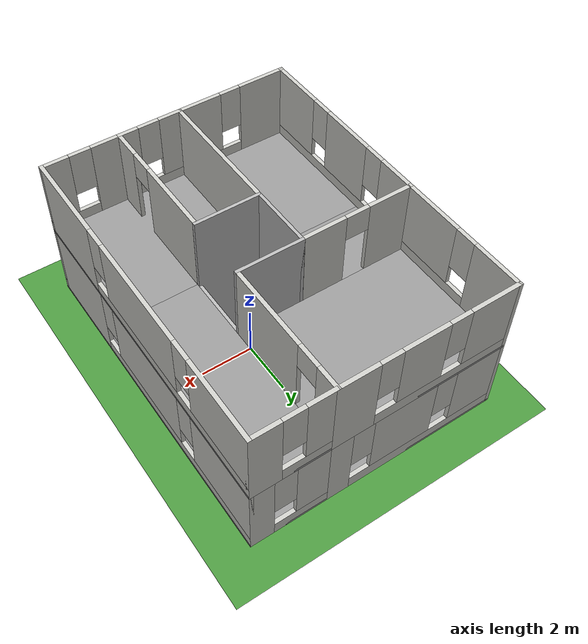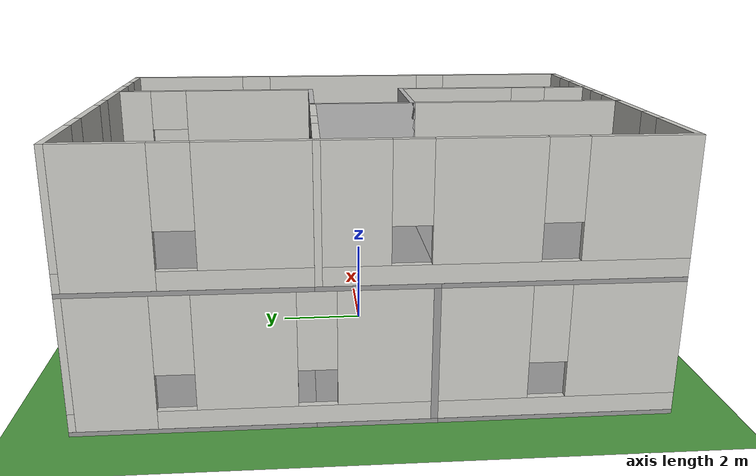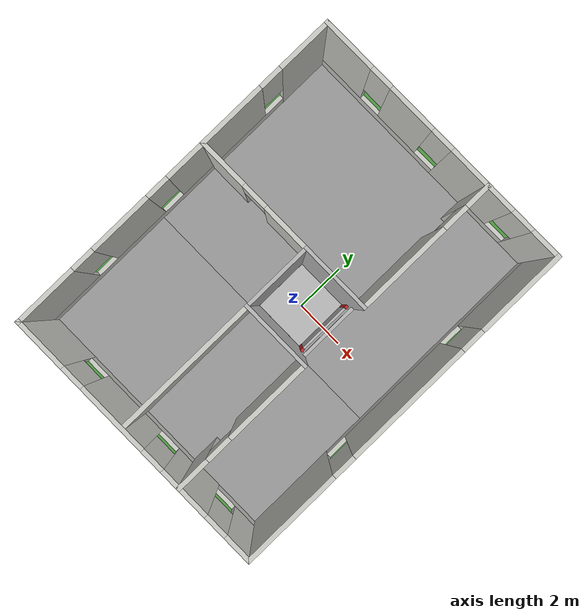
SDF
<?xml version="1.0" ?>
<sdf version="1.5">
  <world name="default">

    <!-- A global light source -->
    <include>
      <uri>model://sun</uri>
    </include>

    <!-- A ground plane -->
    <include>
      <uri>model://ground_plane_gras</uri>
    </include>

    <scene>
      <sky>
        <clouds>
          <speed>12</speed>
        </clouds>
      </sky>
    </scene>

    <include>
      <uri>model://building_with_elevator</uri>
      <pose>-0.6995 0 0 0 0 1.570796</pose>
    </include>

    <!-- World plugin that publishes event messages.
         The topics used in these messages match up with topics used by the
         plugin in the elevator model below.
    -->
    <plugin filename="libSimEventsPlugin.so" name="elevator_event_plugin">
      <!-- Region on the ground floor, in front of the elevator -->
      <region>
        <name>region1</name>
        <volume>
          <min>1.5 -1 0</min>
          <max>2.5 1 1</max>
        </volume>
      </region>

      <!-- Region on the first floor, in front of the elevator -->
      <region>
        <name>region2</name>
        <volume>
          <min>1.5 -1 3</min>
          <max>2.5 1 4</max>
        </volume>
      </region>

      <!-- Event publisher for ground floor-->
      <event>
        <name>region1_event</name>
        <type>occupied</type>
        <region>region1</region>
        <topic>~/elevator</topic>
        <msg_data>0</msg_data>
      </event>

      <!-- Event publisher for first floor-->
      <event>
        <name>region2_event</name>
        <type>occupied</type>
        <region>region2</region>
        <topic>~/elevator</topic>
        <msg_data>1</msg_data>
      </event>
    </plugin>

    <!-- The elevator car -->
    <model name="elevator">
      <pose>0 0 0.05 0 0 0</pose>
      <link name="link">
        <inertial>
          <mass>800</mass>
        </inertial>

        <collision name="floor_collision">
          <geometry>
            <box>
              <size>2.25 2.25 0.1</size>
            </box>
          </geometry>
        </collision>
        <visual name="floor_visual">
          <geometry>
            <box>
              <size>2.25 2.25 0.1</size>
            </box>
          </geometry>
        </visual>

        <!-- wall1_collision is the wall to the right of the door, when
             facing the door -->
        <collision name="wall1_collision">
         <pose>1.0745 1.0625 1.125 0 0 0</pose>
         <geometry>
           <box>
             <size>0.1 0.125 2.25</size>
           </box>
         </geometry>
        </collision>
        <visual name="wall1_visual">
         <pose>1.0745 1.0625 1.125 0 0 0</pose>
         <geometry>
           <box>
             <size>0.1 0.125 2.25</size>
           </box>
         </geometry>
         <material>
           <script>
             <name>Gazebo/Red</name>
           </script>
         </material>
        </visual>

        <!-- wall2_collision is the wall to the left of the door, when
             facing the door -->
        <collision name="wall2_collision">
          <pose>1.0745 -1.0625 1.125 0 0 0</pose>
          <geometry>
            <box>
              <size>0.1 0.125 2.25</size>
            </box>
          </geometry>
        </collision>
        <visual name="wall2_visual">
          <pose>1.0745 -1.0625 1.125 0 0 0</pose>
          <geometry>
            <box>
              <size>0.1 0.125 2.25</size>
            </box>
          </geometry>
          <material>
            <script>
              <name>Gazebo/Red</name>
            </script>
          </material>
        </visual>
      </link>

      <link name="door">
        <pose>1.0745 -0.5 1.06 0 0 0</pose>
        <collision name="collision">
          <geometry>
            <box>
              <size>0.08 1 2.0</size>
            </box>
          </geometry>
        </collision>
        <visual name="visual">
          <geometry>
            <box>
              <size>0.08 1 2.0</size>
            </box>
          </geometry>
        </visual>
      </link>
      <joint name="door" type="revolute">
        <parent>link</parent>
        <child>door</child>
        <pose>0 -0.46 0 3.14159265 0 0</pose>
        <axis>
          <xyz>0 0 1</xyz>
          <limit>
            <lower>0</lower>
            <upper>2</upper>
            <effort>10</effort>
          </limit>

          <dynamics>
            <damping>2</damping>
          </dynamics>
        </axis>
      </joint>

      <link name="door2">
        <pose>1.0745 0.5 1.06 0 0 0</pose>
        <collision name="collision">
          <geometry>
            <box>
              <size>0.08 1 2.0</size>
            </box>
          </geometry>
        </collision>
        <visual name="visual">
          <geometry>
            <box>
              <size>0.08 1 2.0</size>
            </box>
          </geometry>
        </visual>
      </link>
      <joint name="door2" type="revolute">
        <parent>link</parent>
        <child>door2</child>
        <pose>0 0.46 0 0 0 0</pose>
        <axis>
          <xyz>0 0 1</xyz>
          <limit>
            <lower>0</lower>
            <upper>2</upper>
            <effort>10</effort>
          </limit>

          <dynamics>
            <damping>2</damping>
          </dynamics>
        </axis>
      </joint>

      <joint name="lift" type="prismatic">
        <parent>world</parent>
        <child>link</child>
        <axis>
          <xyz>0 0 1</xyz>
          <limit>
            <lower>0</lower>
            <upper>10</upper>
            <effort>100000</effort>
          </limit>

          <dynamics>
            <damping>50</damping>
          </dynamics>
        </axis>
        <physics>
          <ode>
            <implicit_spring_damper>1</implicit_spring_damper>
          </ode>
        </physics>
      </joint>

      <!-- Plugin to control the elevator -->
      <plugin filename="libgazebo_ros_elevator.so" name="elevator_plugin">
        <lift_joint>elevator::lift</lift_joint>
        <door_joint>elevator::door, elevator::door2</door_joint>
        <floor_height>3.0</floor_height>

        <!-- Time the elevator door will stay open in seconds -->
        <door_wait_time>10</door_wait_time>

        <!-- This topic is used to control the elevator -->
        <topic>elevator</topic>

        <door_joint_move_distance>2</door_joint_move_distance>
      </plugin>
    </model>

    <!-- Elevator shaft -->
    <model name="elevator_shaft">
      <static>true</static>
      <link name="link">
        <collision name="shaft_wall1_collision">
          <pose>0 1.19 3 0 0 0</pose>
          <geometry>
            <box>
              <size>2.5 0.12 6</size>
            </box>
          </geometry>
        </collision>
        <visual name="shaft_wall1_visual">
          <pose>0 1.19 3 0 0 0</pose>
          <geometry>
            <box>
              <size>2.5 0.12 6</size>
            </box>
          </geometry>
        </visual>

        <collision name="shaft_wall2_collision">
          <pose>0 -1.19 3 0 0 0</pose>
          <geometry>
            <box>
              <size>2.5 0.12 6</size>
            </box>
          </geometry>
        </collision>
        <visual name="shaft_wall2_visual">
          <pose>0 -1.19 3 0 0 0</pose>
          <geometry>
            <box>
              <size>2.5 0.12 6</size>
            </box>
          </geometry>
        </visual>

        <collision name="shaft_wall3_collision">
          <pose>-1.19 0 3 0 0 0</pose>
          <geometry>
            <box>
              <size>0.12 2.5 6</size>
            </box>
          </geometry>
        </collision>
        <visual name="shaft_wall3_visual">
          <pose>-1.19 0 3 0 0 0</pose>
          <geometry>
            <box>
              <size>0.12 2.5 6</size>
            </box>
          </geometry>
        </visual>

        <collision name="floor0_collision">
          <pose>1.19 0 0.05 0 0 0</pose>
          <geometry>
            <box>
              <size>0.12 2.5 0.1</size>
            </box>
          </geometry>
        </collision>
        <visual name="floor0_visual">
          <pose>1.19 0 0.05 0 0 0</pose>
          <geometry>
            <box>
              <size>0.12 2.5 0.1</size>
            </box>
          </geometry>
        </visual>

        <collision name="floor1_collision">
          <pose>1.19 0 3.05 0 0 0</pose>
          <geometry>
            <box>
              <size>0.12 2.5 0.1</size>
            </box>
          </geometry>
        </collision>
        <visual name="floor1_visual">
          <pose>1.19 0 3.05 0 0 0</pose>
          <geometry>
            <box>
              <size>0.12 2.5 0.1</size>
            </box>
          </geometry>
        </visual>
      </link>
    </model>

  </world>
</sdf>

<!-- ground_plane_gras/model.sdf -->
<sdf version="1.5">
  <model name="ground_plane">
    <static>true</static>
    <link name="link">
      <collision name="collision">
        <geometry>
          <plane>
            <normal>0 0 1</normal>
            <size>100 100</size>
          </plane>
        </geometry>
        <surface>
          <friction>
            <ode>
              <mu>100</mu>
              <mu2>50</mu2>
            </ode>
          </friction>
        </surface>
      </collision>
      <visual name="visual">
        <cast_shadows>false</cast_shadows>
        <geometry>
          <plane>
            <normal>0 0 1</normal>
            <size>100 100</size>
          </plane>
        </geometry>
        <material>
          <script>
            <uri>file://media/materials/scripts/gazebo.material</uri>
            <name>Gazebo/Grass</name>
          </script>
        </material>
      </visual>
    </link>
  </model>
</sdf>
